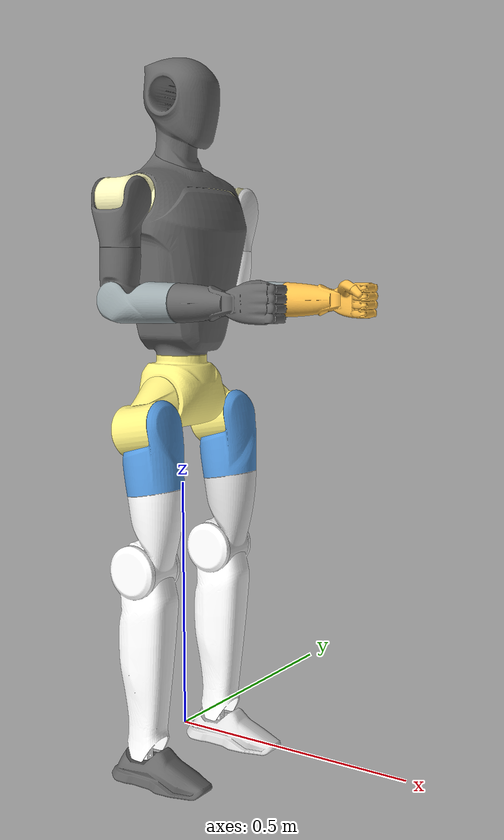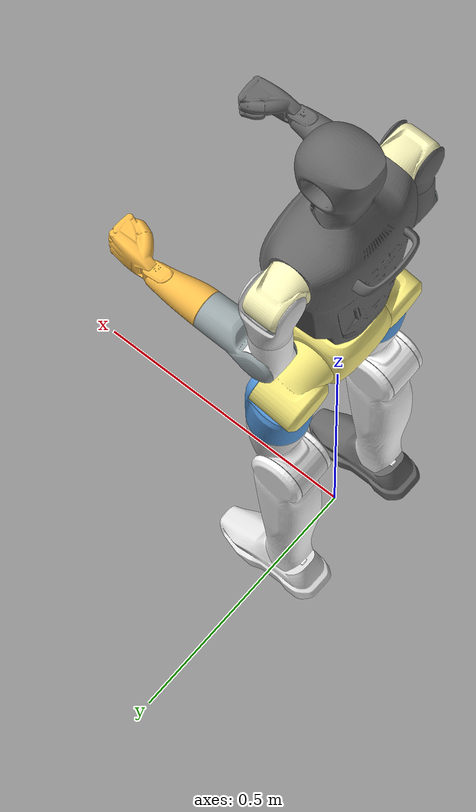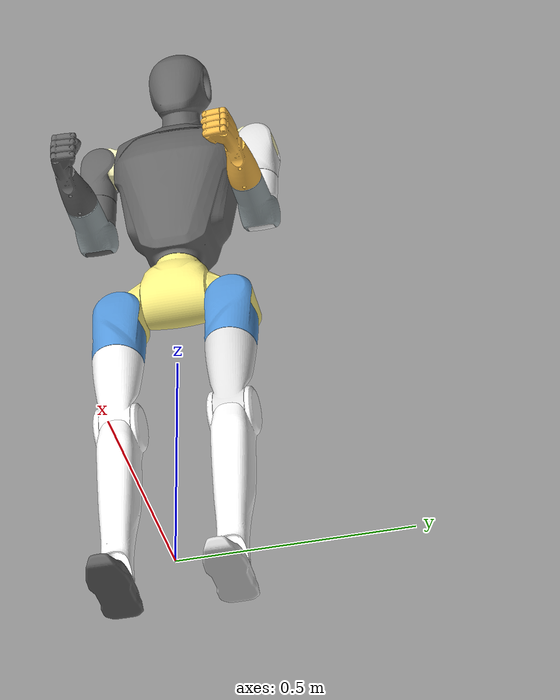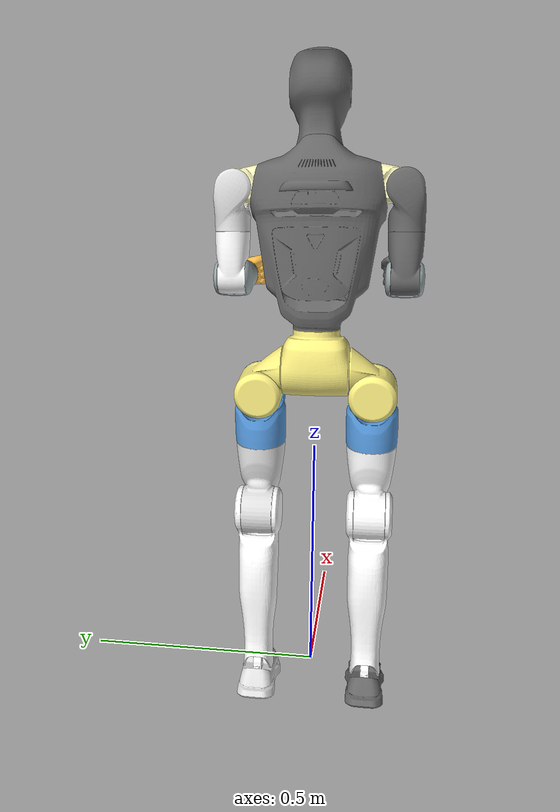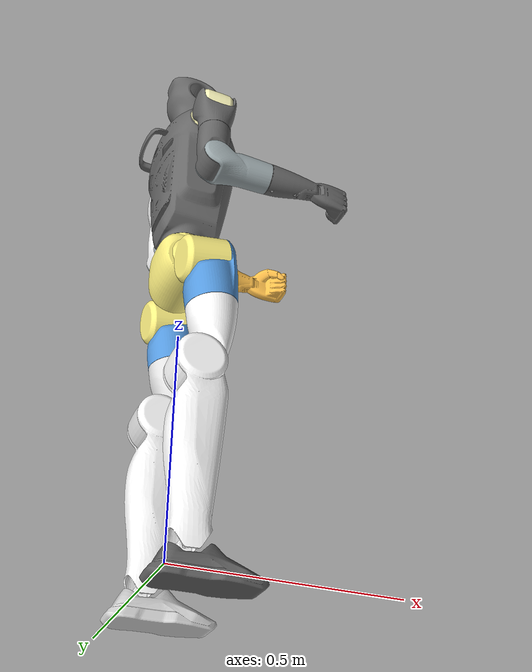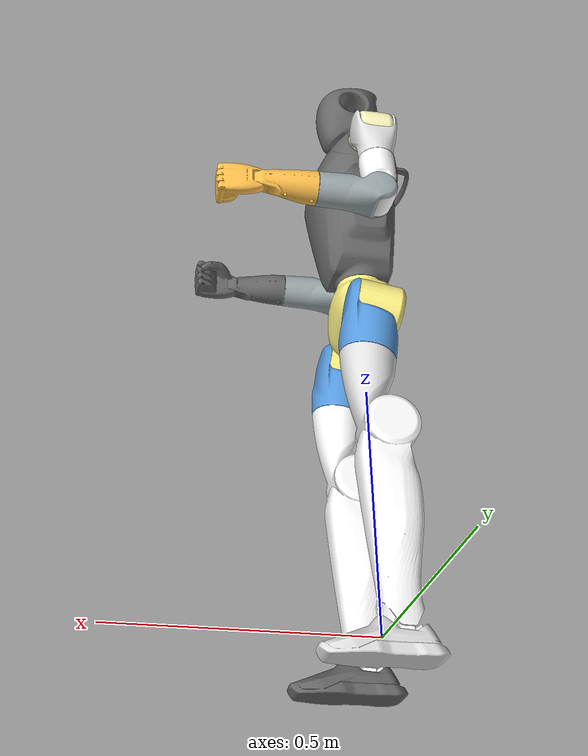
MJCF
<?xml version='1.0' encoding='utf-8'?>
<mujoco model="kengo_with_fist">
  <compiler angle="radian" meshdir="../meshes/" />
  <default>
    <joint damping="0.001" armature="0.03" frictionloss="0.1" />
    </default>
  <statistic center="1.0 0.7 1.0" extent="0.8" />
  <option timestep="0.005" />
  <asset>
    <mesh name="torso_link" content_type="model/stl" file="torso_link.STL" />
    <mesh name="head_link" content_type="model/stl" file="head_link.STL" />
    <mesh name="left_shoulder_pitch_link" content_type="model/stl" file="left_shoulder_pitch_link.STL" />
    <mesh name="left_shoulder_roll_link" content_type="model/stl" file="left_shoulder_roll_link.STL" />
    <mesh name="left_shoulder_yaw_link" content_type="model/stl" file="left_shoulder_yaw_link.STL" />
    <mesh name="left_elbow_link" content_type="model/stl" file="left_elbow_link.STL" />
    <mesh name="left_wrist_roll_link" content_type="model/stl" file="left_wrist_roll_link.STL" />
    <mesh name="right_shoulder_pitch_link" content_type="model/stl" file="right_shoulder_pitch_link.STL" />
    <mesh name="right_shoulder_roll_link" content_type="model/stl" file="right_shoulder_roll_link.STL" />
    <mesh name="right_shoulder_yaw_link" content_type="model/stl" file="right_shoulder_yaw_link.STL" />
    <mesh name="right_elbow_link" content_type="model/stl" file="right_elbow_link.STL" />
    <mesh name="right_wrist_roll_link" content_type="model/stl" file="right_wrist_roll_link.STL" />
    <mesh name="imu_in_torso_link" content_type="model/stl" file="imu_in_torso_link.STL" />
    <mesh name="pelvis_link" content_type="model/stl" file="pelvis_link.STL" />
    <mesh name="left_hip_pitch_link" content_type="model/stl" file="left_hip_pitch_link.STL" />
    <mesh name="left_hip_roll_link" content_type="model/stl" file="left_hip_roll_link.STL" />
    <mesh name="left_hip_yaw_link" content_type="model/stl" file="left_hip_yaw_link.STL" />
    <mesh name="left_knee_link" content_type="model/stl" file="left_knee_link.STL" />
    <mesh name="left_ankle_pitch_link" content_type="model/stl" file="left_ankle_pitch_link.STL" />
    <mesh name="left_ankle_roll_link" content_type="model/stl" file="left_ankle_roll_link.STL" />
    <mesh name="right_hip_pitch_link" content_type="model/stl" file="right_hip_pitch_link.STL" />
    <mesh name="right_hip_roll_link" content_type="model/stl" file="right_hip_roll_link.STL" />
    <mesh name="right_hip_yaw_link" content_type="model/stl" file="right_hip_yaw_link.STL" />
    <mesh name="right_knee_link" content_type="model/stl" file="right_knee_link.STL" />
    <mesh name="right_ankle_pitch_link" content_type="model/stl" file="right_ankle_pitch_link.STL" />
    <mesh name="right_ankle_roll_link" content_type="model/stl" file="right_ankle_roll_link.STL" />
    <mesh name="imu_in_pelvis_link" content_type="model/stl" file="imu_in_pelvis_link.STL" />
    </asset>
  <worldbody>
    <body name="torso_link" pos="0 0 0.793">
      <inertial pos="0.0017747344 1.211175e-06 0.17438204" quat="-3.6131285e-06 -0.69119431 0.00060942809 0.7226687" mass="8.676" diaginertia="0.057930007 0.1384238 0.1602511" />
      <joint name="floating_base_joint" type="free" />
      <body name="neck_sphere" pos="0 0 0.25767">
        <body name="head_sphere" pos="0.006 0 0.19633" />
      </body>
      <geom type="mesh" contype="0" conaffinity="0" group="0" density="0" rgba="0.4 0.4 0.4 1" mesh="torso_link" />
      <geom size="0.1 0.04" pos="0.0 0 0.23" quat="0.707183 0.70703 0 0" type="cylinder" rgba="0 0 0 0" group="1" />
      <geom size="0.085 0.03" pos="0.009 0 0.1" quat="0.707183 0.70703 0 0" type="cylinder" rgba="0 0 0 0" group="1" />
      <geom size="0.085 0.005" pos="0.009 0 0.05" quat="0.707183 0.70703 0 0" type="cylinder" rgba="0 0 0 0" group="1" />
      <geom pos="-0.004 0 0.314" quat="1 0 0 0" type="mesh" contype="0" conaffinity="0" group="0" density="0" rgba="0.4 0.4 0.4 1" mesh="head_link" />
      <geom size="0.075" pos="0.006 0 0.454" rgba="0 0 0 0" group="1" />
      <geom pos="-0.0141 5e-05 0.008" quat="1 0 0 0" type="mesh" contype="0" conaffinity="0" group="0" density="0" rgba="0.788235 0.592157 0.396078 1" mesh="imu_in_torso_link" />
      <body name="left_shoulder_pitch_link" pos="0 0.12279 0.25767" quat="0.99619483 0.087154286 0 0">
        <inertial pos="0.000424885 0.0455089 -0.009578" quat="0.66339806 -0.1320207 -0.1435296 -0.72240764" mass="0.84" diaginertia="0.00061433201 0.00067730441 0.00071539358" />
        <joint name="left_shoulder_pitch_joint" pos="0 0 0" axis="0 1 0" range="-3.49 1.74" actuatorfrcrange="-33 33" />
        <geom type="mesh" contype="0" conaffinity="0" group="0" density="0" rgba="1 0.980392 0.74902 1" mesh="left_shoulder_pitch_link" />
        <body name="left_shoulder_roll_link" pos="-0.00054813 0.049965 -0.01156">
          <inertial pos="-0.00038587 -0.00497939 -0.063874" quat="0.55888207 0.46689949 0.45257673 -0.51461636" mass="0.865" diaginertia="0.00069641203 0.0011035565 0.0012331115" />
          <joint name="left_shoulder_roll_joint" pos="0 0 0" axis="1 0 0" range="-0.17 2.44" actuatorfrcrange="-33 33" />
          <geom type="mesh" contype="0" conaffinity="0" group="0" density="0" rgba="0.87451 0.87451 0.87451 1" mesh="left_shoulder_roll_link" />
          <body name="left_shoulder_yaw_link" pos="0.00054484 -0.013153 -0.1089" quat="0.99619483 -0.087154286 0 0">
            <inertial pos="0.00229376 -0.000247269 -0.063524" quat="-0.022463788 0.69623053 0.007099355 0.71743155" mass="0.835" diaginertia="0.00056737716 0.00095001694 0.0009698759" />
            <joint name="left_shoulder_yaw_joint" pos="0 0 0" axis="0 0 1" range="-2.61 2.61" actuatorfrcrange="-33 33" />
            <geom type="mesh" contype="0" conaffinity="0" group="0" density="0" rgba="1 1 1 1" mesh="left_shoulder_yaw_link" />
            <geom size="0.038 0.095" pos="0 0 0.02" type="cylinder" rgba="0 0 0 0" group="1" />
            <body name="left_elbow_link" pos="0.0029987 0.0016176 -0.074469">
              <inertial pos="0.0850472 -0.000834329 -0.003658" quat="0.99929892 -0.023243983 -0.023289655 0.017860048" mass="0.879" diaginertia="0.00062856006 0.0012616754 0.0013197645" />
              <joint name="left_elbow_joint" pos="0 0 0" axis="0 1 0" range="-0.52 1.57" actuatorfrcrange="-33 33" />
              <geom type="mesh" contype="0" conaffinity="0" group="0" density="0" rgba="0.611765 0.658824 0.670588 1" mesh="left_elbow_link" />
              <body name="left_wrist_roll_link" pos="0.12993 -0.0015997 -0.0030014">
                <inertial pos="0.0559081 0.00267238 -4.2486e-05" quat="0.80348358 -0.5937926 0.021366826 -0.036985682" mass="0.428" diaginertia="0.00027441806 0.0018437385 0.0018829334" />
                <joint name="left_wrist_roll_joint" pos="0 0 0" axis="1 0 0" range="-2.09 2.09" actuatorfrcrange="-33 33" />
                <geom type="mesh" contype="0" conaffinity="0" group="0" density="0" rgba="1 0.752941 0.298039 1" mesh="left_wrist_roll_link" />
                <geom size="0.036 0.05" quat="0.706893 0 0.70732 0" type="cylinder" rgba="0 0 0 0" group="1" />
                <geom size="0.05 0.03 0.035" pos="0.15 -0.018 0.00" type="box" rgba="0 0 0 0" group="1" />
                </body>
              </body>
            </body>
          </body>
        </body>
      <body name="right_shoulder_pitch_link" pos="0 -0.12279 0.25767" quat="0.99619483 -0.087154286 0 0">
        <inertial pos="0.000425347 -0.0455084 -0.009583" quat="0.71820747 0.14527379 0.12872863 -0.66820842" mass="0.849" diaginertia="0.00061758147 0.00068972017 0.00072828836" />
        <joint name="right_shoulder_pitch_joint" pos="0 0 0" axis="0 1 0" range="-3.49 1.74" actuatorfrcrange="-33 33" />
        <geom type="mesh" contype="0" conaffinity="0" group="0" density="0" rgba="1 0.980392 0.74902 1" mesh="right_shoulder_pitch_link" />
        <body name="right_shoulder_roll_link" pos="-0.00054813 -0.049965 -0.01156">
          <inertial pos="-0.000378696 0.00498015 -0.063876" quat="0.46698159 0.55860212 0.51482675 -0.45259838" mass="0.865" diaginertia="0.00069638983 0.0011035164 0.0012331538" />
          <joint name="right_shoulder_roll_joint" pos="0 0 0" axis="1 0 0" range="-2.44 0.17" actuatorfrcrange="-33 33" />
          <geom type="mesh" contype="0" conaffinity="0" group="0" density="0" rgba="0.4 0.4 0.4 1" mesh="right_shoulder_roll_link" />
          <body name="right_shoulder_yaw_link" pos="0.00054484 0.013153 -0.1089" quat="0.99619483 0.087154286 0 0">
            <inertial pos="0.00229998 0.000278936 -0.063512" quat="0.008460292 0.69678391 0.0072950813 0.7171941" mass="0.835" diaginertia="0.00056745486 0.00095016031 0.00096989483" />
            <joint name="right_shoulder_yaw_joint" pos="0 0 0" axis="0 0 1" range="-2.61 2.61" actuatorfrcrange="-33 33" />
            <geom type="mesh" contype="0" conaffinity="0" group="0" density="0" rgba="0.4 0.4 0.4 1" mesh="right_shoulder_yaw_link" />
            <geom size="0.038 0.095" pos="0 0 0.02" type="cylinder" rgba="0 0 0 0" group="1" />
            <body name="right_elbow_link" pos="0.0029987 -0.0016176 -0.074469">
              <inertial pos="0.0850447 0.000664514 -0.003848" quat="-0.024613414 0.99925239 -0.018591938 0.023306395" mass="0.878" diaginertia="0.00062842305 0.0012607423 0.0013187347" />
              <joint name="right_elbow_joint" pos="0 0 0" axis="0 1 0" range="-0.52 1.57" actuatorfrcrange="-33 33" />
              <geom type="mesh" contype="0" conaffinity="0" group="0" density="0" rgba="0.611765 0.658824 0.670588 1" mesh="right_elbow_link" />
              <body name="right_wrist_roll_link" pos="0.12993 0.0016175 -0.0030014">
                <inertial pos="0.0564304 -0.00269735 6.7764e-05" quat="0.59346271 -0.8037269 -0.036958121 0.021428507" mass="0.428" diaginertia="0.00027420499 0.0018435194 0.0018825556" />
                <joint name="right_wrist_roll_joint" pos="0 0 0" axis="1 0 0" range="-2.09 2.09" actuatorfrcrange="-33 33" />
                <geom type="mesh" contype="0" conaffinity="0" group="0" density="0" rgba="0.4 0.4 0.4 1" mesh="right_wrist_roll_link" />
                <geom size="0.036 0.05" quat="0.706893 0 0.70732 0" type="cylinder" rgba="0 0 0 0" group="1" />
                <geom size="0.05 0.03 0.035" pos="0.15 0.018 0.00" type="box" rgba="0 0 0 0" group="1" />
                </body>
              </body>
            </body>
          </body>
        </body>
      <body name="pelvis_link" pos="0 0 -0.125">
        <inertial pos="-0.00057475502 1.1347379e-05 0.02939671" quat="0.70253898 -0.00033528516 -0.71164517 -0.00017696401" mass="4.949" diaginertia="0.011213948 0.015049268 0.018029575" />
        <joint name="waist_yaw_joint" pos="0 0 0" axis="0 0 1" range="-2.7 2.7" actuatorfrcrange="-130 130" />
        <body name="hips_sphere" pos="0.043623 0 -0.041683" />
        <geom type="mesh" contype="0" conaffinity="0" group="0" density="0" rgba="1 0.94902 0.513726 1" mesh="pelvis_link" />
        <geom size="0.07" pos="0 0 0.02" quat="0.706883 0.70733 0 0" rgba="0 0 0 0" group="1" />
        <geom pos="0.0461 0.002015 0.0435" quat="1 0 0 0" type="mesh" contype="0" conaffinity="0" group="0" density="0" rgba="0.788235 0.592157 0.396078 1" mesh="imu_in_pelvis_link" />
        <body name="left_hip_pitch_link" pos="0 0.069 0">
          <inertial pos="0.00922264 0.0499099 -0.043079" quat="0.72739144 0.17523274 0.62873542 0.21186542" mass="1.776" diaginertia="0.0020645911 0.0027238096 0.0029189393" />
          <joint name="left_hip_pitch_joint" pos="0 0 0" axis="0 1 0" range="-2.79 2.79" actuatorfrcrange="-130 130" />
          <geom type="mesh" contype="0" conaffinity="0" group="0" density="0" rgba="1 0.94902 0.513726 1" mesh="left_hip_pitch_link" />
          <body name="left_hip_roll_link" pos="0.043623 0.053004 -0.041683" quat="0.99619483 0 -0.087154286 0">
            <inertial pos="-0.029577 0.000168346 -0.081081" quat="0.011191148 0.88704337 0.005521984 0.46151742" mass="1.865" diaginertia="0.0025180667 0.0035749717 0.0038340916" />
            <joint name="left_hip_roll_joint" pos="0 0 0" axis="1 0 0" range="-0.43 2.09" actuatorfrcrange="-130 130" />
            <geom type="mesh" contype="0" conaffinity="0" group="0" density="0" rgba="0.333333 0.6 0.866667 1" mesh="left_hip_roll_link" />
            <geom size="0.058 0.05" pos="-0.032 0 -0.07" type="cylinder" rgba="0 0 0 0" group="1" />
            <body name="left_hip_yaw_link" pos="-0.035505 0 -0.12202">
              <inertial pos="-0.041608 0.000858443 -0.11954" quat="0.39103581 0.33891852 0.64256175 -0.56510144" mass="2.223" diaginertia="0.002764396 0.007216811 0.007512993" />
              <joint name="left_hip_yaw_joint" pos="0 0 0" axis="0 0 1" range="-2.61 2.61" actuatorfrcrange="-130 130" />
              <geom type="mesh" contype="0" conaffinity="0" group="0" density="0" rgba="0.87451 0.87451 0.87451 1" mesh="left_hip_yaw_link" />
              <body name="left_knee_link" pos="-0.055543 0.0032374 -0.14316">
                <inertial pos="-0.028602 -0.0022378 -0.142072" quat="-0.15057203 0.75178948 0.15733811 0.62240289" mass="3.554" diaginertia="0.0036953747 0.031097588 0.031178037" />
                <joint name="left_knee_joint" pos="0 0 0" axis="0 1 0" range="-0.31 2.39" actuatorfrcrange="-130 130" />
                <geom type="mesh" contype="0" conaffinity="0" group="0" density="0" rgba="1 1 1 1" mesh="left_knee_link" />
                <geom size="0.055" rgba="0 0 0 0" group="1" />
                <geom size="0.05 0.075" pos="-0.03 -0.005 -0.2" quat="0.997189 0 0.0749297 0" type="cylinder" rgba="0 0 0 0" group="1" />
                <body name="left_ankle_pitch_link" pos="-0.069038 -0.003248 -0.357" quat="0.99619526 0 0.087149305 0">
                  <inertial pos="-0.000857866 -1.026e-06 -0.014201" quat="0.51615495 -0.51615495 -0.48330536 -0.48330536" mass="0.121" diaginertia="2.2724865e-05 2.6235135e-05 4.252e-05" />
                  <joint name="left_ankle_pitch_joint" pos="0 0 0" axis="0 1 0" range="-0.85 0.48" actuatorfrcrange="-60 60" />
                  <geom type="mesh" contype="0" conaffinity="0" group="0" density="0" rgba="1 1 1 1" mesh="left_ankle_pitch_link" />
                  <body name="left_ankle_roll_link" pos="-0.00025 0 -0.027">
                    <inertial pos="0.0274864 6.118e-06 -0.022099" quat="3.5165456e-05 0.99968587 2.4004254e-05 -0.025063121" mass="0.564" diaginertia="0.0003769928 0.00168404 0.0017816572" />
                    <joint name="left_ankle_roll_joint" pos="0 0 0" axis="1 0 0" range="-0.26 0.26" actuatorfrcrange="-60 60" />
                    <geom type="mesh" contype="0" conaffinity="0" group="0" density="0" rgba="0.87451 0.87451 0.87451 1" mesh="left_ankle_roll_link" />
                    <geom size="0.014 0.07" pos="0.020 0.028 -0.021" quat="0.707105 0 -0.707108 0" type="cylinder" rgba="0 0 0 0" group="1" />
                    <geom size="0.014 0.09" pos="0.040 0.00 -0.021" quat="0.707105 0 -0.707108 0" type="cylinder" rgba="0 0 0 0" group="1" />
                    <geom size="0.014 0.07" pos="0.020 -0.028 -0.021" quat="0.707105 0 -0.707108 0" type="cylinder" rgba="0 0 0 0" group="1" />
                    <body name="left_foot_end_link" pos="-0.05 0 -0.035" />
                    <body name="left_toe_link" pos="0.13 0 -0.035" />
                    </body>
                  </body>
                </body>
              </body>
            </body>
          </body>
        <body name="right_hip_pitch_link" pos="0 -0.069 0">
          <inertial pos="0.0092218 -0.0499097 -0.043083" quat="0.1753527 0.72736841 -0.21184426 -0.62873574" mass="1.776" diaginertia="0.0020646917 0.0027238647 0.0029189036" />
          <joint name="right_hip_pitch_joint" pos="0 0 0" axis="0 1 0" range="-2.79 2.79" actuatorfrcrange="-130 130" />
          <geom type="mesh" contype="0" conaffinity="0" group="0" density="0" rgba="1 0.94902 0.513726 1" mesh="right_hip_pitch_link" />
          <body name="right_hip_roll_link" pos="0.043623 -0.053004 -0.041683" quat="0.99619483 0 -0.087154286 0">
            <inertial pos="-0.029601 -0.000170022 -0.081129" quat="0.46167658 0.0055038564 0.88696079 0.011180537" mass="1.864" diaginertia="0.0025181682 0.0035707083 0.0038298935" />
            <joint name="right_hip_roll_joint" pos="0 0 0" axis="1 0 0" range="-2.09 0.43" actuatorfrcrange="-130 130" />
            <geom type="mesh" contype="0" conaffinity="0" group="0" density="0" rgba="0.333333 0.6 0.866667 1" mesh="right_hip_roll_link" />
            <geom size="0.058 0.05" pos="-0.032 0 -0.07" type="cylinder" rgba="0 0 0 0" group="1" />
            <body name="right_hip_yaw_link" pos="-0.035505 0 -0.12202">
              <inertial pos="-0.04162 -0.000885698 -0.119558" quat="-0.33907316 -0.39093201 -0.56536484 0.64231157" mass="2.223" diaginertia="0.0027637456 0.0072162368 0.0075126276" />
              <joint name="right_hip_yaw_joint" pos="0 0 0" axis="0 0 1" range="-2.61 2.61" actuatorfrcrange="-130 130" />
              <geom type="mesh" contype="0" conaffinity="0" group="0" density="0" rgba="1 1 1 1" mesh="right_hip_yaw_link" />
              <body name="right_knee_link" pos="-0.055543 -0.0032503 -0.14316">
                <inertial pos="-0.028603 0.00220216 -0.142076" quat="0.6381054 0.0081939408 0.76975311 0.015313678" mass="3.553" diaginertia="0.0036554697 0.031084862 0.031225819" />
                <joint name="right_knee_joint" pos="0 0 0" axis="0 1 0" range="-0.31 2.39" actuatorfrcrange="-130 130" />
                <geom type="mesh" contype="0" conaffinity="0" group="0" density="0" rgba="1 1 1 1" mesh="right_knee_link" />
                <geom size="0.055" rgba="0 0 0 0" group="1" />
                <geom size="0.05 0.075" pos="-0.03 0.005 -0.2" quat="0.997189 0 0.0749297 0" type="cylinder" rgba="0 0 0 0" group="1" />
                <body name="right_ankle_pitch_link" pos="-0.069038 0.0032488 -0.357" quat="0.99619526 0 0.087149305 0">
                  <inertial pos="-0.00085638 1.012e-06 -0.014201" quat="0.48282429 -0.48282429 0.51660498 0.51660498" mass="0.122" diaginertia="2.2783757e-05 2.6346243e-05 4.266e-05" />
                  <joint name="right_ankle_pitch_joint" pos="0 0 0" axis="0 1 0" range="-0.85 0.48" actuatorfrcrange="-60 60" />
                  <geom type="mesh" contype="0" conaffinity="0" group="0" density="0" rgba="1 1 1 1" mesh="right_ankle_pitch_link" />
                  <body name="right_ankle_roll_link" pos="-0.00025 0 -0.027">
                    <inertial pos="0.0274899 5.518e-06 -0.0221" quat="0.99968583 -0.00051928807 0.025059404 3.4689466e-06" mass="0.564" diaginertia="0.00037700383 0.0016840499 0.0017816763" />
                    <joint name="right_ankle_roll_joint" pos="0 0 0" axis="1 0 0" range="-0.26 0.26" actuatorfrcrange="-60 60" />
                    <geom type="mesh" contype="0" conaffinity="0" group="0" density="0" rgba="0.4 0.4 0.4 1" mesh="right_ankle_roll_link" />
                    <geom size="0.014 0.07" pos="0.020 0.028 -0.021" quat="0.707105 0 -0.707108 0" type="cylinder" rgba="0 0 0 0" group="1" />
                    <geom size="0.014 0.09" pos="0.040 0.00 -0.021" quat="0.707105 0 -0.707108 0" type="cylinder" rgba="0 0 0 0" group="1" />
                    <geom size="0.014 0.07" pos="0.020 -0.028 -0.021" quat="0.707105 0 -0.707108 0" type="cylinder" rgba="0 0 0 0" group="1" />
                    <body name="right_foot_end_link" pos="-0.05 0 -0.035" />
                    <body name="right_toe_link" pos="0.13 0 -0.035" />
                    </body>
                  </body>
                </body>
              </body>
            </body>
          </body>
        </body>
      <site name="imu_in_torso" size="0.01" pos="-0.0141 5e-05 0.008" />
      </body>
    </worldbody>
  <visual>
    <headlight diffuse="0.6 0.6 0.6" ambient="0.1 0.1 0.1" specular="0.9 0.9 0.9" />
    <rgba haze="0.15 0.25 0.35 1" />
    <global azimuth="-140" elevation="-20" />
    </visual>
  <actuator>
    <motor name="left_shoulder_pitch_joint" joint="left_shoulder_pitch_joint" />
    <motor name="left_shoulder_roll_joint" joint="left_shoulder_roll_joint" />
    <motor name="left_shoulder_yaw_joint" joint="left_shoulder_yaw_joint" />
    <motor name="left_elbow_joint" joint="left_elbow_joint" />
    <motor name="left_wrist_roll_joint" joint="left_wrist_roll_joint" />
    <motor name="right_shoulder_pitch_joint" joint="right_shoulder_pitch_joint" />
    <motor name="right_shoulder_roll_joint" joint="right_shoulder_roll_joint" />
    <motor name="right_shoulder_yaw_joint" joint="right_shoulder_yaw_joint" />
    <motor name="right_elbow_joint" joint="right_elbow_joint" />
    <motor name="right_wrist_roll_joint" joint="right_wrist_roll_joint" />
    <motor name="waist_yaw_joint" joint="waist_yaw_joint" />
    <motor name="left_hip_pitch_joint" joint="left_hip_pitch_joint" />
    <motor name="left_hip_roll_joint" joint="left_hip_roll_joint" />
    <motor name="left_hip_yaw_joint" joint="left_hip_yaw_joint" />
    <motor name="left_knee_joint" joint="left_knee_joint" />
    <motor name="left_ankle_pitch_joint" joint="left_ankle_pitch_joint" />
    <motor name="left_ankle_roll_joint" joint="left_ankle_roll_joint" />
    <motor name="right_hip_pitch_joint" joint="right_hip_pitch_joint" />
    <motor name="right_hip_roll_joint" joint="right_hip_roll_joint" />
    <motor name="right_hip_yaw_joint" joint="right_hip_yaw_joint" />
    <motor name="right_knee_joint" joint="right_knee_joint" />
    <motor name="right_ankle_pitch_joint" joint="right_ankle_pitch_joint" />
    <motor name="right_ankle_roll_joint" joint="right_ankle_roll_joint" />
    </actuator>
  <sensor>
    <framequat name="imu_quat" objtype="site" objname="imu_in_torso" />
    <gyro name="imu-torso-angular-velocity" site="imu_in_torso" noise="5e-4" cutoff="34.9" />
    <accelerometer name="imu-torso-linear-acceleration" site="imu_in_torso" noise="1e-2" cutoff="157" />
    </sensor>
  </mujoco>
